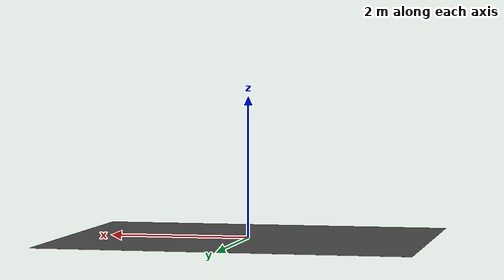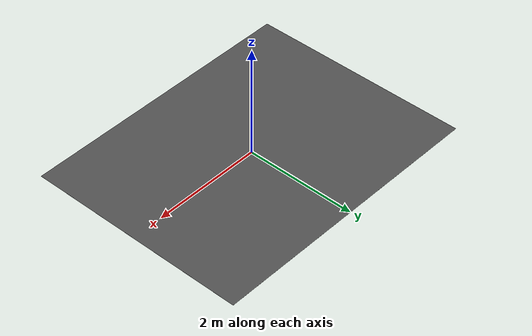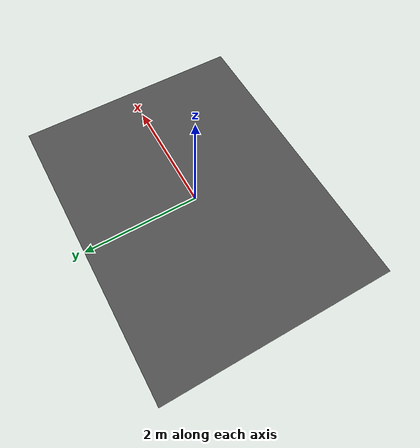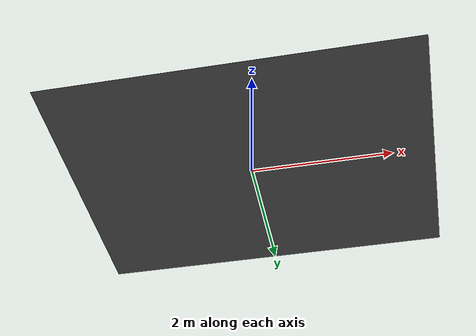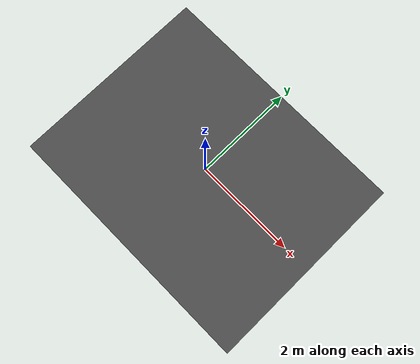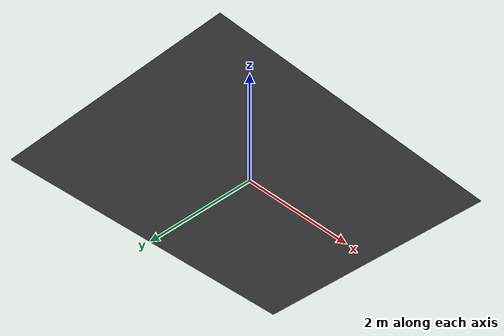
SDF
<?xml version="1.0"?>
<sdf version="1.6">
  <model name="brightcore_track">
    <static>true</static>
    <link name="track_link">
      <pose>0 0 0 0 0 0</pose>

      <collision name="track_collision">
        <geometry>
          <box>
            <size>5.15 4.00 0.005</size>
          </box>
        </geometry>
        <surface>
          <friction>
            <ode>
              <mu>0.9</mu>
              <mu2>0.9</mu2>
            </ode>
          </friction>
        </surface>
      </collision>

      <visual name="track_visual">
        <cast_shadows>false</cast_shadows>
        <pose>0 0 0.003 0 0 0</pose>
        <geometry>
          <box>
            <size>5.15 4.00 0.001</size>
          </box>
        </geometry>
        <material>
          <script>
            <uri>model://brightcore_track/materials/scripts</uri>
            <uri>model://brightcore_track/materials/textures</uri>
            <name>brightcore_track/road</name>
          </script>
        </material>
      </visual>
    </link>
  </model>
</sdf>
